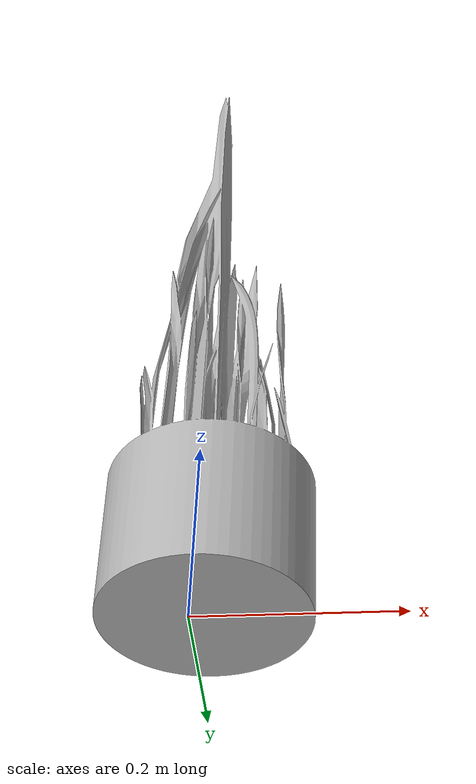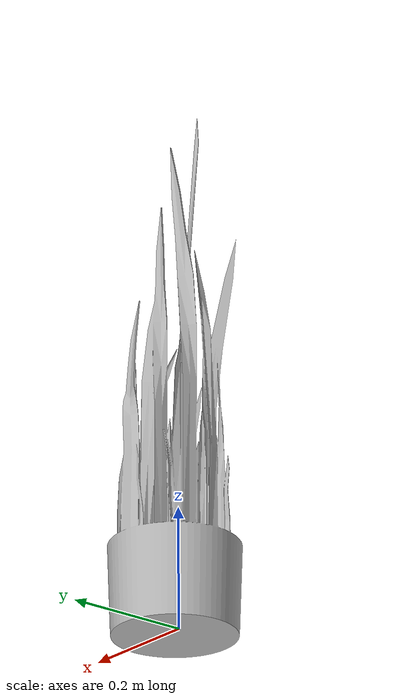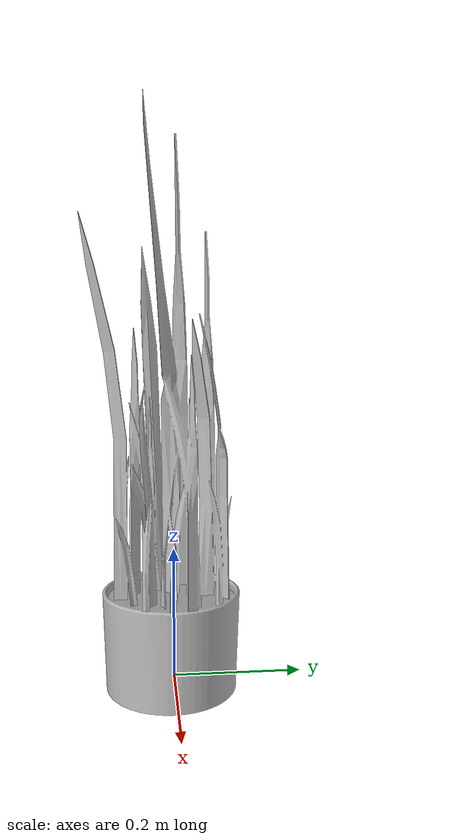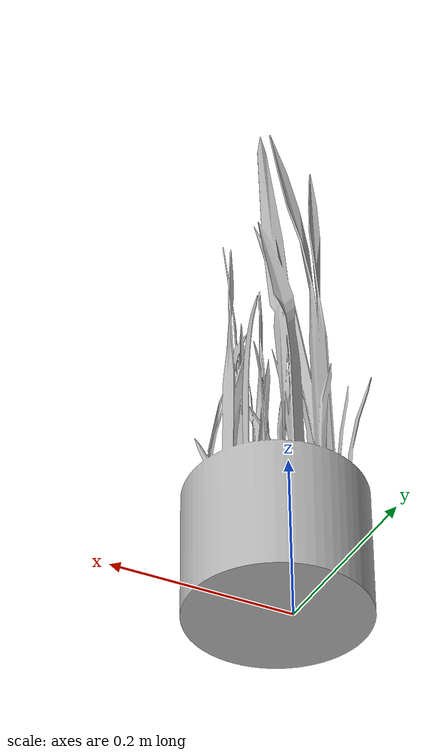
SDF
<?xml version="1.0" ?>
<sdf version="1.6">
  <model name="Plant">
    <static>true</static>
    <link name="link">
      <collision name="collision">
        <geometry>
          <mesh>
            <scale>1 1 1</scale>
            <uri>model://Plant/meshes/Plant.dae</uri>
          </mesh>
        </geometry>
      </collision>
      <visual name="visual">
        <geometry>
          <mesh>
            <scale>1 1 1</scale>
            <uri>model://Plant/meshes/Plant.dae</uri>
          </mesh>
        </geometry>
      </visual>
    </link>
  </model>
</sdf>
